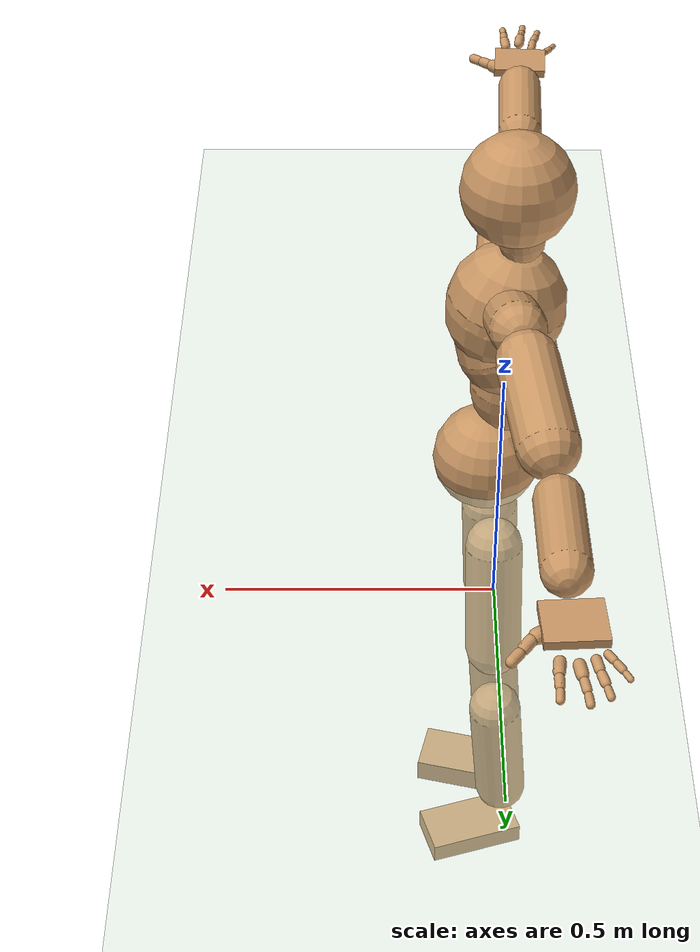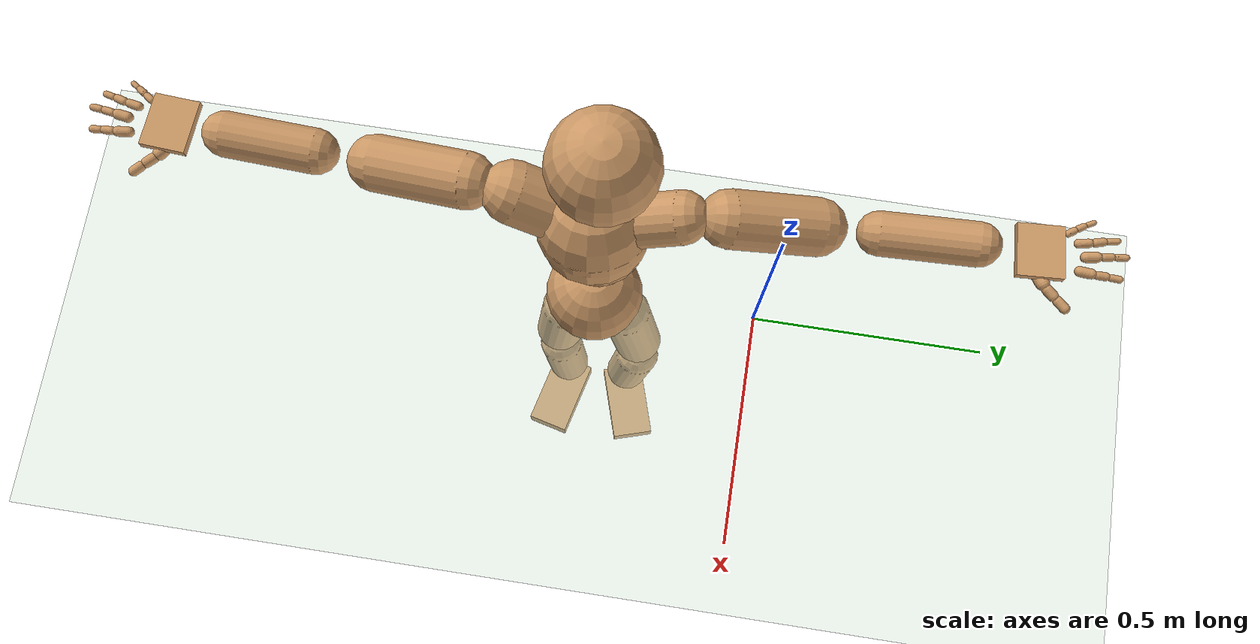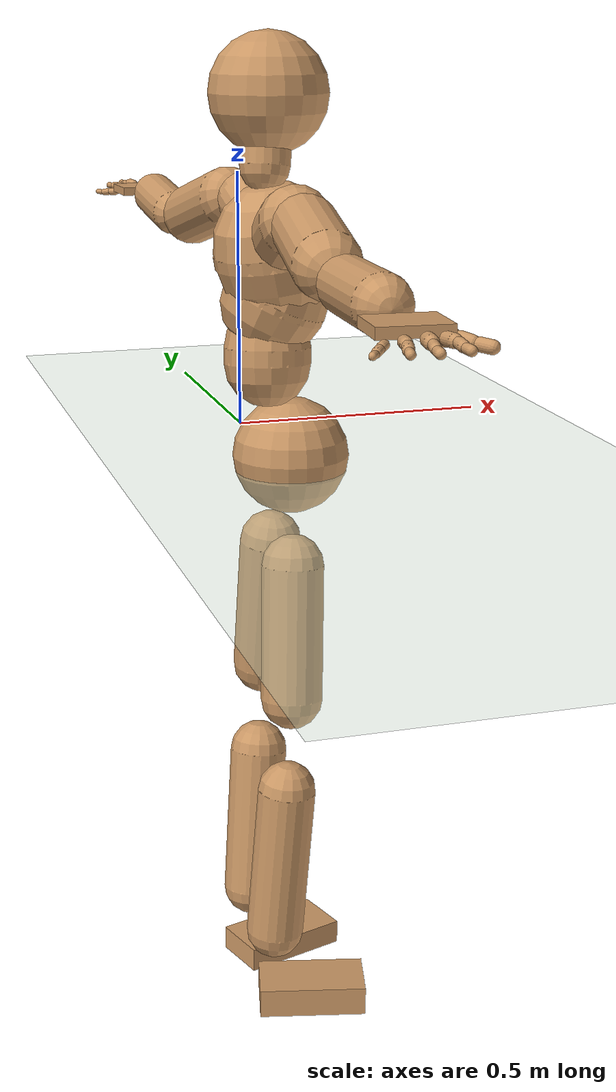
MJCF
<mujoco model="humanoid">
  <compiler coordinate="local" angle="radian"/>
  <default>
    <joint damping="0.0" armature="0.01" stiffness="0.0" limited="true"/>
    <geom conaffinity="1" condim="3" contype="7" margin="0.001" rgba="0.8 0.6 .4 1"/>
  </default>
  <asset>
    <texture type="skybox" builtin="gradient" rgb1=".4 .5 .6" rgb2="0 0 0" width="100" height="100"/>
    <texture builtin="flat" height="1278" mark="cross" markrgb="1 1 1" name="texgeom" random="0.01" rgb1="0.8 0.6 0.4" rgb2="0.8 0.6 0.4" type="cube" width="127"/>
    <texture builtin="checker" height="100" name="texplane" rgb1="0 0 0" rgb2="0.8 0.8 0.8" type="2d" width="100"/>
    <material name="MatPlane" reflectance="0.5" shininess="1" specular="1" texrepeat="60 60" texture="texplane"/>
    <material name="geom" texture="texgeom" texuniform="true"/>
  </asset>
  <worldbody>
    <light cutoff="100" diffuse="1 1 1" dir="-0 0 -1.3" directional="true" exponent="1" pos="0 0 1.3" specular=".1 .1 .1"/>
    <geom conaffinity="1" condim="3" name="floor" pos="0 0 0" rgba="0.8 0.9 0.8 1" size="100 100 .2" type="plane" material="MatPlane"/>
    <body name="Pelvis" pos="0.0015 -0.3551 0.0244">
      <freejoint name="Pelvis"/>
      <geom type="sphere" contype="1" conaffinity="1" density="500" size="0.1066" pos="0.0000 0.0000 0.0000" name="Pelvis"/>
      <body name="L_Hip" pos="-0.0175 0.0562 -0.0963">
        <joint name="L_Hip_x" type="hinge" pos="0 0 0" axis="1 0 0" stiffness="800" damping="80" armature="0.02" range="-180.0000 180.0000"/>
        <joint name="L_Hip_y" type="hinge" pos="0 0 0" axis="0 1 0" stiffness="800" damping="80" armature="0.02" range="-180.0000 180.0000"/>
        <joint name="L_Hip_z" type="hinge" pos="0 0 0" axis="0 0 1" stiffness="800" damping="80" armature="0.02" range="-180.0000 180.0000"/>
        <geom type="capsule" contype="1" conaffinity="1" density="500" fromto="-0.0021 0.0120 -0.0874 -0.0085 0.0481 -0.3496" size="0.0581" name="L_Hip"/>
        <body name="L_Knee" pos="-0.0107 0.0602 -0.437">
          <joint name="L_Knee_x" type="hinge" pos="0 0 0" axis="1 0 0" stiffness="800" damping="80" armature="0.02" range="-180.0000 180.0000"/>
          <joint name="L_Knee_y" type="hinge" pos="0 0 0" axis="0 1 0" stiffness="800" damping="80" armature="0.02" range="-180.0000 180.0000"/>
          <joint name="L_Knee_z" type="hinge" pos="0 0 0" axis="0 0 1" stiffness="800" damping="80" armature="0.02" range="-180.0000 180.0000"/>
          <geom type="capsule" contype="1" conaffinity="1" density="500" fromto="-0.0079 -0.0090 -0.0965 -0.0315 -0.0361 -0.3862" size="0.0553" name="L_Knee"/>
          <body name="L_Ankle" pos="-0.0394 -0.0451 -0.4827">
            <joint name="L_Ankle_x" type="hinge" pos="0 0 0" axis="1 0 0" stiffness="800" damping="80" armature="0.02" range="-180.0000 180.0000"/>
            <joint name="L_Ankle_y" type="hinge" pos="0 0 0" axis="0 1 0" stiffness="800" damping="80" armature="0.02" range="-180.0000 180.0000"/>
            <joint name="L_Ankle_z" type="hinge" pos="0 0 0" axis="0 0 1" stiffness="800" damping="80" armature="0.02" range="-180.0000 180.0000"/>
            <geom type="box" contype="1" conaffinity="1" density="500" pos="0.0738 0.0230 -0.0358" size="0.1021 0.0547 0.0234" quat="0.9886 0.0000 0.0000 0.1508" name="L_Ankle"/>
            <body name="L_Toe" pos="0.1476 0.0461 -0.0715">
              <joint name="L_Toe_x" type="hinge" pos="0 0 0" axis="1 0 0" stiffness="500" damping="50" armature="0.02" range="-180.0000 180.0000"/>
              <joint name="L_Toe_y" type="hinge" pos="0 0 0" axis="0 1 0" stiffness="500" damping="50" armature="0.02" range="-180.0000 180.0000"/>
              <joint name="L_Toe_z" type="hinge" pos="0 0 0" axis="0 0 1" stiffness="500" damping="50" armature="0.02" range="-180.0000 180.0000"/>
              <geom type="box" contype="1" conaffinity="1" density="500" pos="0.0000 0.0000 0.0346" size="0.0011 0.0026 0.0011" quat="0.9879 0.0000 0.0000 0.1549" name="L_Toe"/>
            </body>
          </body>
        </body>
      </body>
      <body name="R_Hip" pos="-0.012 -0.0581 -0.1073">
        <joint name="R_Hip_x" type="hinge" pos="0 0 0" axis="1 0 0" stiffness="800" damping="80" armature="0.02" range="-180.0000 180.0000"/>
        <joint name="R_Hip_y" type="hinge" pos="0 0 0" axis="0 1 0" stiffness="800" damping="80" armature="0.02" range="-180.0000 180.0000"/>
        <joint name="R_Hip_z" type="hinge" pos="0 0 0" axis="0 0 1" stiffness="800" damping="80" armature="0.02" range="-180.0000 180.0000"/>
        <geom type="capsule" contype="1" conaffinity="1" density="500" fromto="-0.0036 -0.0089 -0.0836 -0.0142 -0.0354 -0.3344" size="0.0575" name="R_Hip"/>
        <body name="R_Knee" pos="-0.0178 -0.0443 -0.4179">
          <joint name="R_Knee_x" type="hinge" pos="0 0 0" axis="1 0 0" stiffness="800" damping="80" armature="0.02" range="-180.0000 180.0000"/>
          <joint name="R_Knee_y" type="hinge" pos="0 0 0" axis="0 1 0" stiffness="800" damping="80" armature="0.02" range="-180.0000 180.0000"/>
          <joint name="R_Knee_z" type="hinge" pos="0 0 0" axis="0 0 1" stiffness="800" damping="80" armature="0.02" range="-180.0000 180.0000"/>
          <geom type="capsule" contype="1" conaffinity="1" density="500" fromto="-0.0074 0.0034 -0.0998 -0.0295 0.0137 -0.3991" size="0.0544" name="R_Knee"/>
          <body name="R_Ankle" pos="-0.0369 0.0171 -0.4989">
            <joint name="R_Ankle_x" type="hinge" pos="0 0 0" axis="1 0 0" stiffness="800" damping="80" armature="0.02" range="-180.0000 180.0000"/>
            <joint name="R_Ankle_y" type="hinge" pos="0 0 0" axis="0 1 0" stiffness="800" damping="80" armature="0.02" range="-180.0000 180.0000"/>
            <joint name="R_Ankle_z" type="hinge" pos="0 0 0" axis="0 0 1" stiffness="800" damping="80" armature="0.02" range="-180.0000 180.0000"/>
            <geom type="box" contype="1" conaffinity="1" density="500" pos="0.0773 -0.0187 -0.0347" size="0.1021 0.0547 0.028" quat="0.9930 0.0000 0.0000 -0.1185" name="R_Ankle"/>
            <body name="R_Toe" pos="0.1545 -0.0374 -0.0693">
              <joint name="R_Toe_x" type="hinge" pos="0 0 0" axis="1 0 0" stiffness="500" damping="50" armature="0.02" range="-180.0000 180.0000"/>
              <joint name="R_Toe_y" type="hinge" pos="0 0 0" axis="0 1 0" stiffness="500" damping="50" armature="0.02" range="-180.0000 180.0000"/>
              <joint name="R_Toe_z" type="hinge" pos="0 0 0" axis="0 0 1" stiffness="500" damping="50" armature="0.02" range="-180.0000 180.0000"/>
              <geom type="box" contype="1" conaffinity="1" density="500" pos="0.0000 0.0000 0.0289" size="0.001 0.0026 0.0011" quat="0.9938 0.0000 0.0000 -0.1110" name="R_Toe"/>
            </body>
          </body>
        </body>
      </body>
      <body name="Torso" pos="-0.043 -0.0004 0.1129">
        <joint name="Torso_x" type="hinge" pos="0 0 0" axis="1 0 0" stiffness="1000" damping="100" armature="0.02" range="-180.0000 180.0000"/>
        <joint name="Torso_y" type="hinge" pos="0 0 0" axis="0 1 0" stiffness="1000" damping="100" armature="0.02" range="-180.0000 180.0000"/>
        <joint name="Torso_z" type="hinge" pos="0 0 0" axis="0 0 1" stiffness="1000" damping="100" armature="0.02" range="-180.0000 180.0000"/>
        <geom type="capsule" contype="1" conaffinity="1" density="500" fromto="0.0022 0.0071 0.0877 0.0015 0.0047 0.0585" size="0.0789" name="Torso"/>
        <body name="Spine" pos="0.0037 0.0119 0.1462">
          <joint name="Spine_x" type="hinge" pos="0 0 0" axis="1 0 0" stiffness="1000" damping="100" armature="0.02" range="-180.0000 180.0000"/>
          <joint name="Spine_y" type="hinge" pos="0 0 0" axis="0 1 0" stiffness="1000" damping="100" armature="0.02" range="-180.0000 180.0000"/>
          <joint name="Spine_z" type="hinge" pos="0 0 0" axis="0 0 1" stiffness="1000" damping="100" armature="0.02" range="-180.0000 180.0000"/>
          <geom type="capsule" contype="1" conaffinity="1" density="500" fromto="0.0152 -0.0071 0.0336 0.0101 -0.0047 0.0224" size="0.0965" name="Spine"/>
          <body name="Chest" pos="0.0253 -0.0118 0.056">
            <joint name="Chest_x" type="hinge" pos="0 0 0" axis="1 0 0" stiffness="1000" damping="100" armature="0.02" range="-180.0000 180.0000"/>
            <joint name="Chest_y" type="hinge" pos="0 0 0" axis="0 1 0" stiffness="1000" damping="100" armature="0.02" range="-180.0000 180.0000"/>
            <joint name="Chest_z" type="hinge" pos="0 0 0" axis="0 0 1" stiffness="1000" damping="100" armature="0.02" range="-180.0000 180.0000"/>
            <geom type="capsule" contype="1" conaffinity="1" density="500" fromto="-0.0123 -0.0029 0.0668 -0.0082 -0.0020 0.0445" size="0.1137" name="Chest"/>
            <body name="Neck" pos="-0.0367 -0.0104 0.1748">
              <joint name="Neck_x" type="hinge" pos="0 0 0" axis="1 0 0" stiffness="500" damping="50" armature="0.02" range="-180.0000 180.0000"/>
              <joint name="Neck_y" type="hinge" pos="0 0 0" axis="0 1 0" stiffness="500" damping="50" armature="0.02" range="-180.0000 180.0000"/>
              <joint name="Neck_z" type="hinge" pos="0 0 0" axis="0 0 1" stiffness="500" damping="50" armature="0.02" range="-180.0000 180.0000"/>
              <geom type="capsule" contype="1" conaffinity="1" density="500" fromto="0.0032 0.0048 0.0303 0.0128 0.0194 0.1213" size="0.0449" name="Neck"/>
              <body name="Head" pos="0.0161 0.0242 0.1517">
                <joint name="Head_x" type="hinge" pos="0 0 0" axis="1 0 0" stiffness="500" damping="50" armature="0.02" range="-180.0000 180.0000"/>
                <joint name="Head_y" type="hinge" pos="0 0 0" axis="0 1 0" stiffness="500" damping="50" armature="0.02" range="-180.0000 180.0000"/>
                <joint name="Head_z" type="hinge" pos="0 0 0" axis="0 0 1" stiffness="500" damping="50" armature="0.02" range="-180.0000 180.0000"/>
                <geom type="sphere" contype="1" conaffinity="1" density="500" size="0.1059" pos="0.0000 0.0000 0.0000" name="Head"/>
              </body>
            </body>
            <body name="L_Thorax" pos="-0.011 0.045 0.0793">
              <joint name="L_Thorax_x" type="hinge" pos="0 0 0" axis="1 0 0" stiffness="500" damping="50" armature="0.02" range="-180.0000 180.0000"/>
              <joint name="L_Thorax_y" type="hinge" pos="0 0 0" axis="0 1 0" stiffness="500" damping="50" armature="0.02" range="-180.0000 180.0000"/>
              <joint name="L_Thorax_z" type="hinge" pos="0 0 0" axis="0 0 1" stiffness="500" damping="50" armature="0.02" range="-180.0000 180.0000"/>
              <geom type="capsule" contype="1" conaffinity="1" density="500" fromto="-0.0028 0.0297 0.0122 -0.0112 0.1188 0.0489" size="0.0531" name="L_Thorax"/>
              <body name="L_Shoulder" pos="-0.0139 0.1485 0.0611">
                <joint name="L_Shoulder_x" type="hinge" pos="0 0 0" axis="1 0 0" stiffness="500" damping="50" armature="0.02" range="-180.0000 180.0000"/>
                <joint name="L_Shoulder_y" type="hinge" pos="0 0 0" axis="0 1 0" stiffness="500" damping="50" armature="0.02" range="-180.0000 180.0000"/>
                <joint name="L_Shoulder_z" type="hinge" pos="0 0 0" axis="0 0 1" stiffness="500" damping="50" armature="0.02" range="-180.0000 180.0000"/>
                <geom type="capsule" contype="1" conaffinity="1" density="500" fromto="-0.0097 0.0572 -0.0168 -0.0387 0.2288 -0.0673" size="0.0576" name="L_Shoulder"/>
                <body name="L_Elbow" pos="-0.0483 0.286 -0.0841">
                  <joint name="L_Elbow_x" type="hinge" pos="0 0 0" axis="1 0 0" stiffness="500" damping="50" armature="0.02" range="-720.0000 720.0000"/>
                  <joint name="L_Elbow_y" type="hinge" pos="0 0 0" axis="0 1 0" stiffness="500" damping="50" armature="0.02" range="-720.0000 720.0000"/>
                  <joint name="L_Elbow_z" type="hinge" pos="0 0 0" axis="0 0 1" stiffness="500" damping="50" armature="0.02" range="-720.0000 720.0000"/>
                  <geom type="capsule" contype="1" conaffinity="1" density="500" fromto="-0.0002 0.0625 0.0057 -0.0007 0.2499 0.0229" size="0.0439" name="L_Elbow"/>
                  <body name="L_Wrist" pos="-0.0009 0.3124 0.0287">
                    <joint name="L_Wrist_x" type="hinge" pos="0 0 0" axis="1 0 0" stiffness="300" damping="30" armature="0.02" range="-180.0000 180.0000"/>
                    <joint name="L_Wrist_y" type="hinge" pos="0 0 0" axis="0 1 0" stiffness="300" damping="30" armature="0.02" range="-180.0000 180.0000"/>
                    <joint name="L_Wrist_z" type="hinge" pos="0 0 0" axis="0 0 1" stiffness="300" damping="30" armature="0.02" range="-180.0000 180.0000"/>
                    <geom type="box" contype="1" conaffinity="1" density="500" pos="-0.0031 0.0533 -0.0062" size="0.0456 0.0527 0.0084" quat="0.7273 0.0000 0.0000 -0.6863" name="L_Wrist"/>
                    <body name="L_Index1" pos="0.0231 0.1241 -0.0088">
                      <joint name="L_Index1_x" type="hinge" pos="0 0 0" axis="1 0 0" stiffness="100" damping="10" armature="0.02" range="-180.0000 180.0000"/>
                      <joint name="L_Index1_y" type="hinge" pos="0 0 0" axis="0 1 0" stiffness="100" damping="10" armature="0.02" range="-180.0000 180.0000"/>
                      <joint name="L_Index1_z" type="hinge" pos="0 0 0" axis="0 0 1" stiffness="100" damping="10" armature="0.02" range="-180.0000 180.0000"/>
                      <geom type="capsule" contype="1" conaffinity="1" density="500" fromto="0.0007 0.0072 0.0004 0.0029 0.0287 0.0015" size="0.0102" name="L_Index1"/>
                      <body name="L_Index2" pos="0.0037 0.0359 0.0019">
                        <joint name="L_Index2_x" type="hinge" pos="0 0 0" axis="1 0 0" stiffness="100" damping="10" armature="0.02" range="-180.0000 180.0000"/>
                        <joint name="L_Index2_y" type="hinge" pos="0 0 0" axis="0 1 0" stiffness="100" damping="10" armature="0.02" range="-180.0000 180.0000"/>
                        <joint name="L_Index2_z" type="hinge" pos="0 0 0" axis="0 0 1" stiffness="100" damping="10" armature="0.02" range="-180.0000 180.0000"/>
                        <geom type="capsule" contype="1" conaffinity="1" density="500" fromto="-0.0001 0.0051 -0.0005 -0.0002 0.0203 -0.0021" size="0.0083" name="L_Index2"/>
                        <body name="L_Index3" pos="-0.0003 0.0254 -0.0027">
                          <joint name="L_Index3_x" type="hinge" pos="0 0 0" axis="1 0 0" stiffness="100" damping="10" armature="0.02" range="-180.0000 180.0000"/>
                          <joint name="L_Index3_y" type="hinge" pos="0 0 0" axis="0 1 0" stiffness="100" damping="10" armature="0.02" range="-180.0000 180.0000"/>
                          <joint name="L_Index3_z" type="hinge" pos="0 0 0" axis="0 0 1" stiffness="100" damping="10" armature="0.02" range="-180.0000 180.0000"/>
                          <geom type="capsule" contype="1" conaffinity="1" density="500" fromto="0.0003 0.0055 -0.0001 0.0014 0.0219 -0.0005" size="0.0071" name="L_Index3"/>
                        </body>
                      </body>
                    </body>
                    <body name="L_Middle1" pos="-0.0043 0.1332 -0.0061">
                      <joint name="L_Middle1_x" type="hinge" pos="0 0 0" axis="1 0 0" stiffness="100" damping="10" armature="0.02" range="-180.0000 180.0000"/>
                      <joint name="L_Middle1_y" type="hinge" pos="0 0 0" axis="0 1 0" stiffness="100" damping="10" armature="0.02" range="-180.0000 180.0000"/>
                      <joint name="L_Middle1_z" type="hinge" pos="0 0 0" axis="0 0 1" stiffness="100" damping="10" armature="0.02" range="-180.0000 180.0000"/>
                      <geom type="capsule" contype="1" conaffinity="1" density="500" fromto="-0.0010 0.0069 0.0001 -0.0041 0.0276 0.0003" size="0.0105" name="L_Middle1"/>
                      <body name="L_Middle2" pos="-0.0052 0.0345 0.0004">
                        <joint name="L_Middle2_x" type="hinge" pos="0 0 0" axis="1 0 0" stiffness="100" damping="10" armature="0.02" range="-180.0000 180.0000"/>
                        <joint name="L_Middle2_y" type="hinge" pos="0 0 0" axis="0 1 0" stiffness="100" damping="10" armature="0.02" range="-180.0000 180.0000"/>
                        <joint name="L_Middle2_z" type="hinge" pos="0 0 0" axis="0 0 1" stiffness="100" damping="10" armature="0.02" range="-180.0000 180.0000"/>
                        <geom type="capsule" contype="1" conaffinity="1" density="500" fromto="-0.0010 0.0053 -0.0006 -0.0039 0.0212 -0.0023" size="0.0078" name="L_Middle2"/>
                        <body name="L_Middle3" pos="-0.0049 0.0265 -0.0029">
                          <joint name="L_Middle3_x" type="hinge" pos="0 0 0" axis="1 0 0" stiffness="100" damping="10" armature="0.02" range="-180.0000 180.0000"/>
                          <joint name="L_Middle3_y" type="hinge" pos="0 0 0" axis="0 1 0" stiffness="100" damping="10" armature="0.02" range="-180.0000 180.0000"/>
                          <joint name="L_Middle3_z" type="hinge" pos="0 0 0" axis="0 0 1" stiffness="100" damping="10" armature="0.02" range="-180.0000 180.0000"/>
                          <geom type="capsule" contype="1" conaffinity="1" density="500" fromto="-0.0006 0.0057 -0.0002 -0.0023 0.0228 -0.0007" size="0.007" name="L_Middle3"/>
                        </body>
                      </body>
                    </body>
                    <body name="L_Pinky1" pos="-0.0495 0.1042 -0.0161">
                      <joint name="L_Pinky1_x" type="hinge" pos="0 0 0" axis="1 0 0" stiffness="100" damping="10" armature="0.02" range="-180.0000 180.0000"/>
                      <joint name="L_Pinky1_y" type="hinge" pos="0 0 0" axis="0 1 0" stiffness="100" damping="10" armature="0.02" range="-180.0000 180.0000"/>
                      <joint name="L_Pinky1_z" type="hinge" pos="0 0 0" axis="0 0 1" stiffness="100" damping="10" armature="0.02" range="-180.0000 180.0000"/>
                      <geom type="capsule" contype="1" conaffinity="1" density="500" fromto="-0.0026 0.0037 -0.0004 -0.0104 0.0147 -0.0014" size="0.0073" name="L_Pinky1"/>
                      <body name="L_Pinky2" pos="-0.013 0.0184 -0.0018">
                        <joint name="L_Pinky2_x" type="hinge" pos="0 0 0" axis="1 0 0" stiffness="100" damping="10" armature="0.02" range="-180.0000 180.0000"/>
                        <joint name="L_Pinky2_y" type="hinge" pos="0 0 0" axis="0 1 0" stiffness="100" damping="10" armature="0.02" range="-180.0000 180.0000"/>
                        <joint name="L_Pinky2_z" type="hinge" pos="0 0 0" axis="0 0 1" stiffness="100" damping="10" armature="0.02" range="-180.0000 180.0000"/>
                        <geom type="capsule" contype="1" conaffinity="1" density="500" fromto="-0.0024 0.0036 -0.0004 -0.0097 0.0142 -0.0018" size="0.007" name="L_Pinky2"/>
                        <body name="L_Pinky3" pos="-0.0121 0.0178 -0.0022">
                          <joint name="L_Pinky3_x" type="hinge" pos="0 0 0" axis="1 0 0" stiffness="100" damping="10" armature="0.02" range="-180.0000 180.0000"/>
                          <joint name="L_Pinky3_y" type="hinge" pos="0 0 0" axis="0 1 0" stiffness="100" damping="10" armature="0.02" range="-180.0000 180.0000"/>
                          <joint name="L_Pinky3_z" type="hinge" pos="0 0 0" axis="0 0 1" stiffness="100" damping="10" armature="0.02" range="-180.0000 180.0000"/>
                          <geom type="capsule" contype="1" conaffinity="1" density="500" fromto="-0.0020 0.0040 -0.0000 -0.0081 0.0158 -0.0002" size="0.0054" name="L_Pinky3"/>
                        </body>
                      </body>
                    </body>
                    <body name="L_Ring1" pos="-0.0311 0.1197 -0.0098">
                      <joint name="L_Ring1_x" type="hinge" pos="0 0 0" axis="1 0 0" stiffness="100" damping="10" armature="0.02" range="-180.0000 180.0000"/>
                      <joint name="L_Ring1_y" type="hinge" pos="0 0 0" axis="0 1 0" stiffness="100" damping="10" armature="0.02" range="-180.0000 180.0000"/>
                      <joint name="L_Ring1_z" type="hinge" pos="0 0 0" axis="0 0 1" stiffness="100" damping="10" armature="0.02" range="-180.0000 180.0000"/>
                      <geom type="capsule" contype="1" conaffinity="1" density="500" fromto="-0.0011 0.0065 0.0002 -0.0046 0.0258 0.0006" size="0.0088" name="L_Ring1"/>
                      <body name="L_Ring2" pos="-0.0057 0.0323 0.0008">
                        <joint name="L_Ring2_x" type="hinge" pos="0 0 0" axis="1 0 0" stiffness="100" damping="10" armature="0.02" range="-180.0000 180.0000"/>
                        <joint name="L_Ring2_y" type="hinge" pos="0 0 0" axis="0 1 0" stiffness="100" damping="10" armature="0.02" range="-180.0000 180.0000"/>
                        <joint name="L_Ring2_z" type="hinge" pos="0 0 0" axis="0 0 1" stiffness="100" damping="10" armature="0.02" range="-180.0000 180.0000"/>
                        <geom type="capsule" contype="1" conaffinity="1" density="500" fromto="-0.0015 0.0052 -0.0005 -0.0061 0.0207 -0.0020" size="0.0083" name="L_Ring2"/>
                        <body name="L_Ring3" pos="-0.0076 0.0258 -0.0025">
                          <joint name="L_Ring3_x" type="hinge" pos="0 0 0" axis="1 0 0" stiffness="100" damping="10" armature="0.02" range="-180.0000 180.0000"/>
                          <joint name="L_Ring3_y" type="hinge" pos="0 0 0" axis="0 1 0" stiffness="100" damping="10" armature="0.02" range="-180.0000 180.0000"/>
                          <joint name="L_Ring3_z" type="hinge" pos="0 0 0" axis="0 0 1" stiffness="100" damping="10" armature="0.02" range="-180.0000 180.0000"/>
                          <geom type="capsule" contype="1" conaffinity="1" density="500" fromto="-0.0011 0.0056 -0.0001 -0.0045 0.0223 -0.0004" size="0.0065" name="L_Ring3"/>
                        </body>
                      </body>
                    </body>
                    <body name="L_Thumb1" pos="0.0308 0.0514 -0.0209">
                      <joint name="L_Thumb1_x" type="hinge" pos="0 0 0" axis="1 0 0" stiffness="100" damping="10" armature="0.02" range="-180.0000 180.0000"/>
                      <joint name="L_Thumb1_y" type="hinge" pos="0 0 0" axis="0 1 0" stiffness="100" damping="10" armature="0.02" range="-180.0000 180.0000"/>
                      <joint name="L_Thumb1_z" type="hinge" pos="0 0 0" axis="0 0 1" stiffness="100" damping="10" armature="0.02" range="-180.0000 180.0000"/>
                      <geom type="capsule" contype="1" conaffinity="1" density="500" fromto="0.0059 0.0039 0.0003 0.0236 0.0156 0.0011" size="0.0137" name="L_Thumb1"/>
                      <body name="L_Thumb2" pos="0.0295 0.0195 0.0013">
                        <joint name="L_Thumb2_x" type="hinge" pos="0 0 0" axis="1 0 0" stiffness="100" damping="10" armature="0.02" range="-180.0000 180.0000"/>
                        <joint name="L_Thumb2_y" type="hinge" pos="0 0 0" axis="0 1 0" stiffness="100" damping="10" armature="0.02" range="-180.0000 180.0000"/>
                        <joint name="L_Thumb2_z" type="hinge" pos="0 0 0" axis="0 0 1" stiffness="100" damping="10" armature="0.02" range="-180.0000 180.0000"/>
                        <geom type="capsule" contype="1" conaffinity="1" density="500" fromto="0.0037 0.0046 -0.0010 0.0149 0.0185 -0.0041" size="0.0107" name="L_Thumb2"/>
                        <body name="L_Thumb3" pos="0.0186 0.0231 -0.0051">
                          <joint name="L_Thumb3_x" type="hinge" pos="0 0 0" axis="1 0 0" stiffness="100" damping="10" armature="0.02" range="-180.0000 180.0000"/>
                          <joint name="L_Thumb3_y" type="hinge" pos="0 0 0" axis="0 1 0" stiffness="100" damping="10" armature="0.02" range="-180.0000 180.0000"/>
                          <joint name="L_Thumb3_z" type="hinge" pos="0 0 0" axis="0 0 1" stiffness="100" damping="10" armature="0.02" range="-180.0000 180.0000"/>
                          <geom type="capsule" contype="1" conaffinity="1" density="500" fromto="0.0041 0.0050 -0.0006 0.0165 0.0201 -0.0025" size="0.0099" name="L_Thumb3"/>
                        </body>
                      </body>
                    </body>
                  </body>
                </body>
              </body>
            </body>
            <body name="R_Thorax" pos="-0.0138 -0.0493 0.08">
              <joint name="R_Thorax_x" type="hinge" pos="0 0 0" axis="1 0 0" stiffness="500" damping="50" armature="0.02" range="-180.0000 180.0000"/>
              <joint name="R_Thorax_y" type="hinge" pos="0 0 0" axis="0 1 0" stiffness="500" damping="50" armature="0.02" range="-180.0000 180.0000"/>
              <joint name="R_Thorax_z" type="hinge" pos="0 0 0" axis="0 0 1" stiffness="500" damping="50" armature="0.02" range="-180.0000 180.0000"/>
              <geom type="capsule" contype="1" conaffinity="1" density="500" fromto="-0.0024 -0.0273 0.0119 -0.0095 -0.1091 0.0476" size="0.0625" name="R_Thorax"/>
              <body name="R_Shoulder" pos="-0.0119 -0.1364 0.0595">
                <joint name="R_Shoulder_x" type="hinge" pos="0 0 0" axis="1 0 0" stiffness="500" damping="50" armature="0.02" range="-180.0000 180.0000"/>
                <joint name="R_Shoulder_y" type="hinge" pos="0 0 0" axis="0 1 0" stiffness="500" damping="50" armature="0.02" range="-180.0000 180.0000"/>
                <joint name="R_Shoulder_z" type="hinge" pos="0 0 0" axis="0 0 1" stiffness="500" damping="50" armature="0.02" range="-180.0000 180.0000"/>
                <geom type="capsule" contype="1" conaffinity="1" density="500" fromto="-0.0069 -0.0615 -0.0106 -0.0277 -0.2461 -0.0425" size="0.0564" name="R_Shoulder"/>
                <body name="R_Elbow" pos="-0.0346 -0.3076 -0.0531">
                  <joint name="R_Elbow_x" type="hinge" pos="0 0 0" axis="1 0 0" stiffness="500" damping="50" armature="0.02" range="-720.0000 720.0000"/>
                  <joint name="R_Elbow_y" type="hinge" pos="0 0 0" axis="0 1 0" stiffness="500" damping="50" armature="0.02" range="-720.0000 720.0000"/>
                  <joint name="R_Elbow_z" type="hinge" pos="0 0 0" axis="0 0 1" stiffness="500" damping="50" armature="0.02" range="-720.0000 720.0000"/>
                  <geom type="capsule" contype="1" conaffinity="1" density="500" fromto="-0.0026 -0.0604 0.0005 -0.0104 -0.2415 0.0019" size="0.0451" name="R_Elbow"/>
                  <body name="R_Wrist" pos="-0.0131 -0.3019 0.0024">
                    <joint name="R_Wrist_x" type="hinge" pos="0 0 0" axis="1 0 0" stiffness="300" damping="30" armature="0.02" range="-180.0000 180.0000"/>
                    <joint name="R_Wrist_y" type="hinge" pos="0 0 0" axis="0 1 0" stiffness="300" damping="30" armature="0.02" range="-180.0000 180.0000"/>
                    <joint name="R_Wrist_z" type="hinge" pos="0 0 0" axis="0 0 1" stiffness="300" damping="30" armature="0.02" range="-180.0000 180.0000"/>
                    <geom type="box" contype="1" conaffinity="1" density="500" pos="-0.0036 -0.0529 -0.0081" size="0.0456 0.0545 0.0086" quat="0.7304 0.0000 0.0000 0.6830" name="R_Wrist"/>
                    <body name="R_Index1" pos="0.0222 -0.1233 -0.0126">
                      <joint name="R_Index1_x" type="hinge" pos="0 0 0" axis="1 0 0" stiffness="100" damping="10" armature="0.02" range="-180.0000 180.0000"/>
                      <joint name="R_Index1_y" type="hinge" pos="0 0 0" axis="0 1 0" stiffness="100" damping="10" armature="0.02" range="-180.0000 180.0000"/>
                      <joint name="R_Index1_z" type="hinge" pos="0 0 0" axis="0 0 1" stiffness="100" damping="10" armature="0.02" range="-180.0000 180.0000"/>
                      <geom type="capsule" contype="1" conaffinity="1" density="500" fromto="0.0007 -0.0072 0.0004 0.0029 -0.0287 0.0015" size="0.0102" name="R_Index1"/>
                      <body name="R_Index2" pos="0.0037 -0.0359 0.0019">
                        <joint name="R_Index2_x" type="hinge" pos="0 0 0" axis="1 0 0" stiffness="100" damping="10" armature="0.02" range="-180.0000 180.0000"/>
                        <joint name="R_Index2_y" type="hinge" pos="0 0 0" axis="0 1 0" stiffness="100" damping="10" armature="0.02" range="-180.0000 180.0000"/>
                        <joint name="R_Index2_z" type="hinge" pos="0 0 0" axis="0 0 1" stiffness="100" damping="10" armature="0.02" range="-180.0000 180.0000"/>
                        <geom type="capsule" contype="1" conaffinity="1" density="500" fromto="-0.0001 -0.0051 -0.0005 -0.0002 -0.0203 -0.0021" size="0.0083" name="R_Index2"/>
                        <body name="R_Index3" pos="-0.0003 -0.0254 -0.0027">
                          <joint name="R_Index3_x" type="hinge" pos="0 0 0" axis="1 0 0" stiffness="100" damping="10" armature="0.02" range="-180.0000 180.0000"/>
                          <joint name="R_Index3_y" type="hinge" pos="0 0 0" axis="0 1 0" stiffness="100" damping="10" armature="0.02" range="-180.0000 180.0000"/>
                          <joint name="R_Index3_z" type="hinge" pos="0 0 0" axis="0 0 1" stiffness="100" damping="10" armature="0.02" range="-180.0000 180.0000"/>
                          <geom type="capsule" contype="1" conaffinity="1" density="500" fromto="0.0003 -0.0047 -0.0001 0.0014 -0.0187 -0.0005" size="0.0074" name="R_Index3"/>
                        </body>
                      </body>
                    </body>
                    <body name="R_Middle1" pos="-0.0052 -0.1324 -0.01">
                      <joint name="R_Middle1_x" type="hinge" pos="0 0 0" axis="1 0 0" stiffness="100" damping="10" armature="0.02" range="-180.0000 180.0000"/>
                      <joint name="R_Middle1_y" type="hinge" pos="0 0 0" axis="0 1 0" stiffness="100" damping="10" armature="0.02" range="-180.0000 180.0000"/>
                      <joint name="R_Middle1_z" type="hinge" pos="0 0 0" axis="0 0 1" stiffness="100" damping="10" armature="0.02" range="-180.0000 180.0000"/>
                      <geom type="capsule" contype="1" conaffinity="1" density="500" fromto="-0.0010 -0.0069 0.0001 -0.0041 -0.0276 0.0003" size="0.0105" name="R_Middle1"/>
                      <body name="R_Middle2" pos="-0.0052 -0.0345 0.0004">
                        <joint name="R_Middle2_x" type="hinge" pos="0 0 0" axis="1 0 0" stiffness="100" damping="10" armature="0.02" range="-180.0000 180.0000"/>
                        <joint name="R_Middle2_y" type="hinge" pos="0 0 0" axis="0 1 0" stiffness="100" damping="10" armature="0.02" range="-180.0000 180.0000"/>
                        <joint name="R_Middle2_z" type="hinge" pos="0 0 0" axis="0 0 1" stiffness="100" damping="10" armature="0.02" range="-180.0000 180.0000"/>
                        <geom type="capsule" contype="1" conaffinity="1" density="500" fromto="-0.0010 -0.0053 -0.0006 -0.0039 -0.0212 -0.0023" size="0.0078" name="R_Middle2"/>
                        <body name="R_Middle3" pos="-0.0049 -0.0265 -0.0029">
                          <joint name="R_Middle3_x" type="hinge" pos="0 0 0" axis="1 0 0" stiffness="100" damping="10" armature="0.02" range="-180.0000 180.0000"/>
                          <joint name="R_Middle3_y" type="hinge" pos="0 0 0" axis="0 1 0" stiffness="100" damping="10" armature="0.02" range="-180.0000 180.0000"/>
                          <joint name="R_Middle3_z" type="hinge" pos="0 0 0" axis="0 0 1" stiffness="100" damping="10" armature="0.02" range="-180.0000 180.0000"/>
                          <geom type="capsule" contype="1" conaffinity="1" density="500" fromto="-0.0006 -0.0049 -0.0002 -0.0023 -0.0196 -0.0007" size="0.0073" name="R_Middle3"/>
                        </body>
                      </body>
                    </body>
                    <body name="R_Pinky1" pos="-0.0504 -0.1035 -0.02">
                      <joint name="R_Pinky1_x" type="hinge" pos="0 0 0" axis="1 0 0" stiffness="100" damping="10" armature="0.02" range="-180.0000 180.0000"/>
                      <joint name="R_Pinky1_y" type="hinge" pos="0 0 0" axis="0 1 0" stiffness="100" damping="10" armature="0.02" range="-180.0000 180.0000"/>
                      <joint name="R_Pinky1_z" type="hinge" pos="0 0 0" axis="0 0 1" stiffness="100" damping="10" armature="0.02" range="-180.0000 180.0000"/>
                      <geom type="capsule" contype="1" conaffinity="1" density="500" fromto="-0.0026 -0.0037 -0.0004 -0.0104 -0.0147 -0.0014" size="0.0073" name="R_Pinky1"/>
                      <body name="R_Pinky2" pos="-0.013 -0.0184 -0.0018">
                        <joint name="R_Pinky2_x" type="hinge" pos="0 0 0" axis="1 0 0" stiffness="100" damping="10" armature="0.02" range="-180.0000 180.0000"/>
                        <joint name="R_Pinky2_y" type="hinge" pos="0 0 0" axis="0 1 0" stiffness="100" damping="10" armature="0.02" range="-180.0000 180.0000"/>
                        <joint name="R_Pinky2_z" type="hinge" pos="0 0 0" axis="0 0 1" stiffness="100" damping="10" armature="0.02" range="-180.0000 180.0000"/>
                        <geom type="capsule" contype="1" conaffinity="1" density="500" fromto="-0.0024 -0.0036 -0.0004 -0.0097 -0.0142 -0.0018" size="0.007" name="R_Pinky2"/>
                        <body name="R_Pinky3" pos="-0.0121 -0.0178 -0.0022">
                          <joint name="R_Pinky3_x" type="hinge" pos="0 0 0" axis="1 0 0" stiffness="100" damping="10" armature="0.02" range="-180.0000 180.0000"/>
                          <joint name="R_Pinky3_y" type="hinge" pos="0 0 0" axis="0 1 0" stiffness="100" damping="10" armature="0.02" range="-180.0000 180.0000"/>
                          <joint name="R_Pinky3_z" type="hinge" pos="0 0 0" axis="0 0 1" stiffness="100" damping="10" armature="0.02" range="-180.0000 180.0000"/>
                          <geom type="capsule" contype="1" conaffinity="1" density="500" fromto="-0.0020 -0.0032 -0.0000 -0.0081 -0.0126 -0.0002" size="0.0056" name="R_Pinky3"/>
                        </body>
                      </body>
                    </body>
                    <body name="R_Ring1" pos="-0.032 -0.1189 -0.0137">
                      <joint name="R_Ring1_x" type="hinge" pos="0 0 0" axis="1 0 0" stiffness="100" damping="10" armature="0.02" range="-180.0000 180.0000"/>
                      <joint name="R_Ring1_y" type="hinge" pos="0 0 0" axis="0 1 0" stiffness="100" damping="10" armature="0.02" range="-180.0000 180.0000"/>
                      <joint name="R_Ring1_z" type="hinge" pos="0 0 0" axis="0 0 1" stiffness="100" damping="10" armature="0.02" range="-180.0000 180.0000"/>
                      <geom type="capsule" contype="1" conaffinity="1" density="500" fromto="-0.0011 -0.0064 0.0002 -0.0046 -0.0258 0.0006" size="0.0088" name="R_Ring1"/>
                      <body name="R_Ring2" pos="-0.0057 -0.0322 0.0008">
                        <joint name="R_Ring2_x" type="hinge" pos="0 0 0" axis="1 0 0" stiffness="100" damping="10" armature="0.02" range="-180.0000 180.0000"/>
                        <joint name="R_Ring2_y" type="hinge" pos="0 0 0" axis="0 1 0" stiffness="100" damping="10" armature="0.02" range="-180.0000 180.0000"/>
                        <joint name="R_Ring2_z" type="hinge" pos="0 0 0" axis="0 0 1" stiffness="100" damping="10" armature="0.02" range="-180.0000 180.0000"/>
                        <geom type="capsule" contype="1" conaffinity="1" density="500" fromto="-0.0015 -0.0052 -0.0005 -0.0061 -0.0207 -0.0020" size="0.0083" name="R_Ring2"/>
                        <body name="R_Ring3" pos="-0.0076 -0.0258 -0.0025">
                          <joint name="R_Ring3_x" type="hinge" pos="0 0 0" axis="1 0 0" stiffness="100" damping="10" armature="0.02" range="-180.0000 180.0000"/>
                          <joint name="R_Ring3_y" type="hinge" pos="0 0 0" axis="0 1 0" stiffness="100" damping="10" armature="0.02" range="-180.0000 180.0000"/>
                          <joint name="R_Ring3_z" type="hinge" pos="0 0 0" axis="0 0 1" stiffness="100" damping="10" armature="0.02" range="-180.0000 180.0000"/>
                          <geom type="capsule" contype="1" conaffinity="1" density="500" fromto="-0.0011 -0.0048 -0.0001 -0.0045 -0.0191 -0.0004" size="0.0068" name="R_Ring3"/>
                        </body>
                      </body>
                    </body>
                    <body name="R_Thumb1" pos="0.0299 -0.0506 -0.0248">
                      <joint name="R_Thumb1_x" type="hinge" pos="0 0 0" axis="1 0 0" stiffness="100" damping="10" armature="0.02" range="-180.0000 180.0000"/>
                      <joint name="R_Thumb1_y" type="hinge" pos="0 0 0" axis="0 1 0" stiffness="100" damping="10" armature="0.02" range="-180.0000 180.0000"/>
                      <joint name="R_Thumb1_z" type="hinge" pos="0 0 0" axis="0 0 1" stiffness="100" damping="10" armature="0.02" range="-180.0000 180.0000"/>
                      <geom type="capsule" contype="1" conaffinity="1" density="500" fromto="0.0059 -0.0039 0.0003 0.0236 -0.0156 0.0011" size="0.0137" name="R_Thumb1"/>
                      <body name="R_Thumb2" pos="0.0295 -0.0195 0.0013">
                        <joint name="R_Thumb2_x" type="hinge" pos="0 0 0" axis="1 0 0" stiffness="100" damping="10" armature="0.02" range="-180.0000 180.0000"/>
                        <joint name="R_Thumb2_y" type="hinge" pos="0 0 0" axis="0 1 0" stiffness="100" damping="10" armature="0.02" range="-180.0000 180.0000"/>
                        <joint name="R_Thumb2_z" type="hinge" pos="0 0 0" axis="0 0 1" stiffness="100" damping="10" armature="0.02" range="-180.0000 180.0000"/>
                        <geom type="capsule" contype="1" conaffinity="1" density="500" fromto="0.0037 -0.0046 -0.0010 0.0149 -0.0185 -0.0041" size="0.0107" name="R_Thumb2"/>
                        <body name="R_Thumb3" pos="0.0186 -0.0231 -0.0051">
                          <joint name="R_Thumb3_x" type="hinge" pos="0 0 0" axis="1 0 0" stiffness="100" damping="10" armature="0.02" range="-180.0000 180.0000"/>
                          <joint name="R_Thumb3_y" type="hinge" pos="0 0 0" axis="0 1 0" stiffness="100" damping="10" armature="0.02" range="-180.0000 180.0000"/>
                          <joint name="R_Thumb3_z" type="hinge" pos="0 0 0" axis="0 0 1" stiffness="100" damping="10" armature="0.02" range="-180.0000 180.0000"/>
                          <geom type="capsule" contype="1" conaffinity="1" density="500" fromto="0.0041 -0.0042 -0.0006 0.0165 -0.0169 -0.0025" size="0.0101" name="R_Thumb3"/>
                        </body>
                      </body>
                    </body>
                  </body>
                </body>
              </body>
            </body>
          </body>
        </body>
      </body>
    </body>
  </worldbody>
  <actuator>
    <motor name="L_Hip_x" joint="L_Hip_x" gear="500"/>
    <motor name="L_Hip_y" joint="L_Hip_y" gear="500"/>
    <motor name="L_Hip_z" joint="L_Hip_z" gear="500"/>
    <motor name="L_Knee_x" joint="L_Knee_x" gear="500"/>
    <motor name="L_Knee_y" joint="L_Knee_y" gear="500"/>
    <motor name="L_Knee_z" joint="L_Knee_z" gear="500"/>
    <motor name="L_Ankle_x" joint="L_Ankle_x" gear="500"/>
    <motor name="L_Ankle_y" joint="L_Ankle_y" gear="500"/>
    <motor name="L_Ankle_z" joint="L_Ankle_z" gear="500"/>
    <motor name="L_Toe_x" joint="L_Toe_x" gear="500"/>
    <motor name="L_Toe_y" joint="L_Toe_y" gear="500"/>
    <motor name="L_Toe_z" joint="L_Toe_z" gear="500"/>
    <motor name="R_Hip_x" joint="R_Hip_x" gear="500"/>
    <motor name="R_Hip_y" joint="R_Hip_y" gear="500"/>
    <motor name="R_Hip_z" joint="R_Hip_z" gear="500"/>
    <motor name="R_Knee_x" joint="R_Knee_x" gear="500"/>
    <motor name="R_Knee_y" joint="R_Knee_y" gear="500"/>
    <motor name="R_Knee_z" joint="R_Knee_z" gear="500"/>
    <motor name="R_Ankle_x" joint="R_Ankle_x" gear="500"/>
    <motor name="R_Ankle_y" joint="R_Ankle_y" gear="500"/>
    <motor name="R_Ankle_z" joint="R_Ankle_z" gear="500"/>
    <motor name="R_Toe_x" joint="R_Toe_x" gear="500"/>
    <motor name="R_Toe_y" joint="R_Toe_y" gear="500"/>
    <motor name="R_Toe_z" joint="R_Toe_z" gear="500"/>
    <motor name="Torso_x" joint="Torso_x" gear="500"/>
    <motor name="Torso_y" joint="Torso_y" gear="500"/>
    <motor name="Torso_z" joint="Torso_z" gear="500"/>
    <motor name="Spine_x" joint="Spine_x" gear="500"/>
    <motor name="Spine_y" joint="Spine_y" gear="500"/>
    <motor name="Spine_z" joint="Spine_z" gear="500"/>
    <motor name="Chest_x" joint="Chest_x" gear="500"/>
    <motor name="Chest_y" joint="Chest_y" gear="500"/>
    <motor name="Chest_z" joint="Chest_z" gear="500"/>
    <motor name="Neck_x" joint="Neck_x" gear="500"/>
    <motor name="Neck_y" joint="Neck_y" gear="500"/>
    <motor name="Neck_z" joint="Neck_z" gear="500"/>
    <motor name="Head_x" joint="Head_x" gear="500"/>
    <motor name="Head_y" joint="Head_y" gear="500"/>
    <motor name="Head_z" joint="Head_z" gear="500"/>
    <motor name="L_Thorax_x" joint="L_Thorax_x" gear="500"/>
    <motor name="L_Thorax_y" joint="L_Thorax_y" gear="500"/>
    <motor name="L_Thorax_z" joint="L_Thorax_z" gear="500"/>
    <motor name="L_Shoulder_x" joint="L_Shoulder_x" gear="500"/>
    <motor name="L_Shoulder_y" joint="L_Shoulder_y" gear="500"/>
    <motor name="L_Shoulder_z" joint="L_Shoulder_z" gear="500"/>
    <motor name="L_Elbow_x" joint="L_Elbow_x" gear="500"/>
    <motor name="L_Elbow_y" joint="L_Elbow_y" gear="500"/>
    <motor name="L_Elbow_z" joint="L_Elbow_z" gear="500"/>
    <motor name="L_Wrist_x" joint="L_Wrist_x" gear="500"/>
    <motor name="L_Wrist_y" joint="L_Wrist_y" gear="500"/>
    <motor name="L_Wrist_z" joint="L_Wrist_z" gear="500"/>
    <motor name="L_Index1_x" joint="L_Index1_x" gear="500"/>
    <motor name="L_Index1_y" joint="L_Index1_y" gear="500"/>
    <motor name="L_Index1_z" joint="L_Index1_z" gear="500"/>
    <motor name="L_Index2_x" joint="L_Index2_x" gear="500"/>
    <motor name="L_Index2_y" joint="L_Index2_y" gear="500"/>
    <motor name="L_Index2_z" joint="L_Index2_z" gear="500"/>
    <motor name="L_Index3_x" joint="L_Index3_x" gear="500"/>
    <motor name="L_Index3_y" joint="L_Index3_y" gear="500"/>
    <motor name="L_Index3_z" joint="L_Index3_z" gear="500"/>
    <motor name="L_Middle1_x" joint="L_Middle1_x" gear="500"/>
    <motor name="L_Middle1_y" joint="L_Middle1_y" gear="500"/>
    <motor name="L_Middle1_z" joint="L_Middle1_z" gear="500"/>
    <motor name="L_Middle2_x" joint="L_Middle2_x" gear="500"/>
    <motor name="L_Middle2_y" joint="L_Middle2_y" gear="500"/>
    <motor name="L_Middle2_z" joint="L_Middle2_z" gear="500"/>
    <motor name="L_Middle3_x" joint="L_Middle3_x" gear="500"/>
    <motor name="L_Middle3_y" joint="L_Middle3_y" gear="500"/>
    <motor name="L_Middle3_z" joint="L_Middle3_z" gear="500"/>
    <motor name="L_Pinky1_x" joint="L_Pinky1_x" gear="500"/>
    <motor name="L_Pinky1_y" joint="L_Pinky1_y" gear="500"/>
    <motor name="L_Pinky1_z" joint="L_Pinky1_z" gear="500"/>
    <motor name="L_Pinky2_x" joint="L_Pinky2_x" gear="500"/>
    <motor name="L_Pinky2_y" joint="L_Pinky2_y" gear="500"/>
    <motor name="L_Pinky2_z" joint="L_Pinky2_z" gear="500"/>
    <motor name="L_Pinky3_x" joint="L_Pinky3_x" gear="500"/>
    <motor name="L_Pinky3_y" joint="L_Pinky3_y" gear="500"/>
    <motor name="L_Pinky3_z" joint="L_Pinky3_z" gear="500"/>
    <motor name="L_Ring1_x" joint="L_Ring1_x" gear="500"/>
    <motor name="L_Ring1_y" joint="L_Ring1_y" gear="500"/>
    <motor name="L_Ring1_z" joint="L_Ring1_z" gear="500"/>
    <motor name="L_Ring2_x" joint="L_Ring2_x" gear="500"/>
    <motor name="L_Ring2_y" joint="L_Ring2_y" gear="500"/>
    <motor name="L_Ring2_z" joint="L_Ring2_z" gear="500"/>
    <motor name="L_Ring3_x" joint="L_Ring3_x" gear="500"/>
    <motor name="L_Ring3_y" joint="L_Ring3_y" gear="500"/>
    <motor name="L_Ring3_z" joint="L_Ring3_z" gear="500"/>
    <motor name="L_Thumb1_x" joint="L_Thumb1_x" gear="500"/>
    <motor name="L_Thumb1_y" joint="L_Thumb1_y" gear="500"/>
    <motor name="L_Thumb1_z" joint="L_Thumb1_z" gear="500"/>
    <motor name="L_Thumb2_x" joint="L_Thumb2_x" gear="500"/>
    <motor name="L_Thumb2_y" joint="L_Thumb2_y" gear="500"/>
    <motor name="L_Thumb2_z" joint="L_Thumb2_z" gear="500"/>
    <motor name="L_Thumb3_x" joint="L_Thumb3_x" gear="500"/>
    <motor name="L_Thumb3_y" joint="L_Thumb3_y" gear="500"/>
    <motor name="L_Thumb3_z" joint="L_Thumb3_z" gear="500"/>
    <motor name="R_Thorax_x" joint="R_Thorax_x" gear="500"/>
    <motor name="R_Thorax_y" joint="R_Thorax_y" gear="500"/>
    <motor name="R_Thorax_z" joint="R_Thorax_z" gear="500"/>
    <motor name="R_Shoulder_x" joint="R_Shoulder_x" gear="500"/>
    <motor name="R_Shoulder_y" joint="R_Shoulder_y" gear="500"/>
    <motor name="R_Shoulder_z" joint="R_Shoulder_z" gear="500"/>
    <motor name="R_Elbow_x" joint="R_Elbow_x" gear="500"/>
    <motor name="R_Elbow_y" joint="R_Elbow_y" gear="500"/>
    <motor name="R_Elbow_z" joint="R_Elbow_z" gear="500"/>
    <motor name="R_Wrist_x" joint="R_Wrist_x" gear="500"/>
    <motor name="R_Wrist_y" joint="R_Wrist_y" gear="500"/>
    <motor name="R_Wrist_z" joint="R_Wrist_z" gear="500"/>
    <motor name="R_Index1_x" joint="R_Index1_x" gear="500"/>
    <motor name="R_Index1_y" joint="R_Index1_y" gear="500"/>
    <motor name="R_Index1_z" joint="R_Index1_z" gear="500"/>
    <motor name="R_Index2_x" joint="R_Index2_x" gear="500"/>
    <motor name="R_Index2_y" joint="R_Index2_y" gear="500"/>
    <motor name="R_Index2_z" joint="R_Index2_z" gear="500"/>
    <motor name="R_Index3_x" joint="R_Index3_x" gear="500"/>
    <motor name="R_Index3_y" joint="R_Index3_y" gear="500"/>
    <motor name="R_Index3_z" joint="R_Index3_z" gear="500"/>
    <motor name="R_Middle1_x" joint="R_Middle1_x" gear="500"/>
    <motor name="R_Middle1_y" joint="R_Middle1_y" gear="500"/>
    <motor name="R_Middle1_z" joint="R_Middle1_z" gear="500"/>
    <motor name="R_Middle2_x" joint="R_Middle2_x" gear="500"/>
    <motor name="R_Middle2_y" joint="R_Middle2_y" gear="500"/>
    <motor name="R_Middle2_z" joint="R_Middle2_z" gear="500"/>
    <motor name="R_Middle3_x" joint="R_Middle3_x" gear="500"/>
    <motor name="R_Middle3_y" joint="R_Middle3_y" gear="500"/>
    <motor name="R_Middle3_z" joint="R_Middle3_z" gear="500"/>
    <motor name="R_Pinky1_x" joint="R_Pinky1_x" gear="500"/>
    <motor name="R_Pinky1_y" joint="R_Pinky1_y" gear="500"/>
    <motor name="R_Pinky1_z" joint="R_Pinky1_z" gear="500"/>
    <motor name="R_Pinky2_x" joint="R_Pinky2_x" gear="500"/>
    <motor name="R_Pinky2_y" joint="R_Pinky2_y" gear="500"/>
    <motor name="R_Pinky2_z" joint="R_Pinky2_z" gear="500"/>
    <motor name="R_Pinky3_x" joint="R_Pinky3_x" gear="500"/>
    <motor name="R_Pinky3_y" joint="R_Pinky3_y" gear="500"/>
    <motor name="R_Pinky3_z" joint="R_Pinky3_z" gear="500"/>
    <motor name="R_Ring1_x" joint="R_Ring1_x" gear="500"/>
    <motor name="R_Ring1_y" joint="R_Ring1_y" gear="500"/>
    <motor name="R_Ring1_z" joint="R_Ring1_z" gear="500"/>
    <motor name="R_Ring2_x" joint="R_Ring2_x" gear="500"/>
    <motor name="R_Ring2_y" joint="R_Ring2_y" gear="500"/>
    <motor name="R_Ring2_z" joint="R_Ring2_z" gear="500"/>
    <motor name="R_Ring3_x" joint="R_Ring3_x" gear="500"/>
    <motor name="R_Ring3_y" joint="R_Ring3_y" gear="500"/>
    <motor name="R_Ring3_z" joint="R_Ring3_z" gear="500"/>
    <motor name="R_Thumb1_x" joint="R_Thumb1_x" gear="500"/>
    <motor name="R_Thumb1_y" joint="R_Thumb1_y" gear="500"/>
    <motor name="R_Thumb1_z" joint="R_Thumb1_z" gear="500"/>
    <motor name="R_Thumb2_x" joint="R_Thumb2_x" gear="500"/>
    <motor name="R_Thumb2_y" joint="R_Thumb2_y" gear="500"/>
    <motor name="R_Thumb2_z" joint="R_Thumb2_z" gear="500"/>
    <motor name="R_Thumb3_x" joint="R_Thumb3_x" gear="500"/>
    <motor name="R_Thumb3_y" joint="R_Thumb3_y" gear="500"/>
    <motor name="R_Thumb3_z" joint="R_Thumb3_z" gear="500"/>
  </actuator>
  <contact>
    <exclude body1="Torso" body2="Chest"/>
    <exclude body1="Head" body2="Chest"/>
    <exclude body1="R_Knee" body2="R_Toe"/>
    <exclude body1="R_Knee" body2="L_Ankle"/>
    <exclude body1="R_Knee" body2="L_Toe"/>
    <exclude body1="L_Knee" body2="L_Toe"/>
    <exclude body1="L_Knee" body2="R_Ankle"/>
    <exclude body1="L_Knee" body2="R_Toe"/>
    <exclude body1="L_Shoulder" body2="Chest"/>
    <exclude body1="R_Shoulder" body2="Chest"/>
  </contact>
  <sensor/>
  <size njmax="700" nconmax="700"/>
</mujoco>
